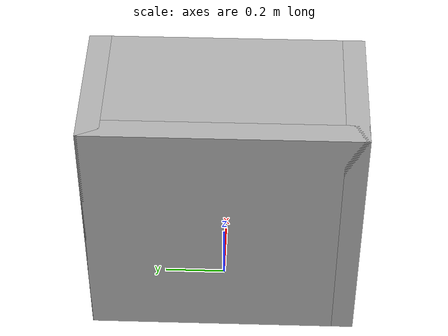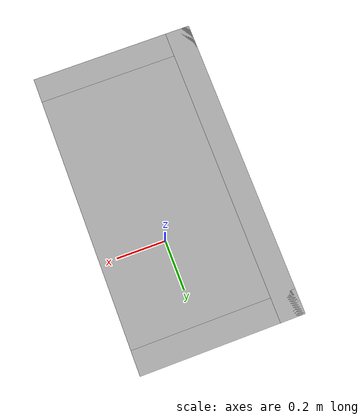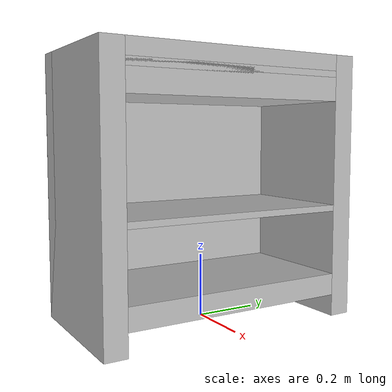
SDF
<?xml version="1.0" ?>
<sdf version="1.6">
  <model name="rwc2023/small_cabinet">
    <static>true</static>
    <link name="1_link">
      <collision name="1_col">
        <geometry>
          <box>
            <size>0.46 0.07 0.84</size>
          </box>
        </geometry>
      </collision>
      <visual name="1_vis">
        <geometry>
          <box>
            <size>0.46 0.07 0.84</size>
          </box>
        </geometry>
      </visual>
      <pose>0.0 -0.395 0.42 0 0 0</pose>
    </link>
    <link name="2_link">
      <collision name="2_col">
        <geometry>
          <box>
            <size>0.46 0.07 0.84</size>
          </box>
        </geometry>
      </collision>
      <visual name="2_vis">
        <geometry>
          <box>
            <size>0.46 0.07 0.84</size>
          </box>
        </geometry>
      </visual>
      <pose>0.0 0.395 0.42 0 0 0</pose>
    </link>
    <link name="3_link">
      <collision name="3_col">
        <geometry>
          <box>
            <size>0.07 0.86 0.84</size>
          </box>
        </geometry>
      </collision>
      <visual name="3_vis">
        <geometry>
          <box>
            <size>0.07 0.86 0.84</size>
          </box>
        </geometry>
      </visual>
      <pose>-0.195 0.0 0.42 0 0 0</pose>
    </link>
    <link name="4_link">
      <collision name="4_col">
        <geometry>
          <box>
            <size>0.39 0.72 0.075</size>
          </box>
        </geometry>
      </collision>
      <visual name="4_vis">
        <geometry>
          <box>
            <size>0.39 0.72 0.075</size>
          </box>
        </geometry>
      </visual>
      <pose>0.035 0.0 0.8025 0 0 0</pose>
    </link>
    <link name="5_link">
      <collision name="5_col">
        <geometry>
          <box>
            <size>0.39 0.72 0.07</size>
          </box>
        </geometry>
      </collision>
      <visual name="5_vis">
        <geometry>
          <box>
            <size>0.39 0.72 0.07</size>
          </box>
        </geometry>
      </visual>
      <pose>0.035 0.0 0.105 0 0 0</pose>
    </link>
    <link name="6_link">
      <collision name="6_col">
        <geometry>
          <box>
            <size>0.39 0.72 0.02</size>
          </box>
        </geometry>
      </collision>
      <visual name="6_vis">
        <geometry>
          <box>
            <size>0.39 0.72 0.02</size>
          </box>
        </geometry>
      </visual>
      <pose>0.035 0.0 0.355 0 0 0</pose>
    </link>
    <link name="7_link">
      <collision name="7_col">
        <geometry>
          <box>
            <size>0.39 0.72 0.075</size>
          </box>
        </geometry>
      </collision>
      <visual name="7_vis">
        <geometry>
          <box>
            <size>0.39 0.72 0.075</size>
          </box>
        </geometry>
      </visual>
      <pose>0.035 0.0 0.7325 0 0 0</pose>
    </link>
    <link name="8_link">
      <collision name="8_col">
        <geometry>
          <box>
            <size>0.39 0.72 0.02</size>
          </box>
        </geometry>
      </collision>
      <visual name="8_vis">
        <geometry>
          <box>
            <size>0.39 0.72 0.02</size>
          </box>
        </geometry>
      </visual>
      <pose>0.035 0.0 0.78 0 0 0</pose>
    </link>
    <link name="in_front_of">
      <virtual_volume name="in_front_of_vv">
        <geometry>
          <box>
            <size>0.2 0.66 0.01</size>
          </box>
        </geometry>
        <pose>0.73 0.0 0.005 0 0 0</pose>
      </virtual_volume>
    </link>
    <link name="shelf1">
      <virtual_volume name="shelf1_vv">
        <geometry>
          <box>
            <size>0.37 0.66 0.25</size>
          </box>
        </geometry>
        <pose>0.035 0.0 0.285 0 0 0</pose>
      </virtual_volume>
    </link>
    <link name="shelf2">
      <virtual_volume name="shelf2_vv">
        <geometry>
          <box>
            <size>0.37 0.66 0.25</size>
          </box>
        </geometry>
        <pose>0.035 0.0 0.51 0 0 0</pose>
      </virtual_volume>
    </link>
    <link name="shelf3">
      <virtual_volume name="shelf3_vv">
        <geometry>
          <box>
            <size>0.37 0.66 0.25</size>
          </box>
        </geometry>
        <pose>0.035 0.0 0.915 0 0 0</pose>
      </virtual_volume>
    </link>
    <link name="shelf4">
      <virtual_volume name="shelf4_vv">
        <geometry>
          <box>
            <size>0.37 0.66 0.25</size>
          </box>
        </geometry>
        <pose>0.035 0.0 0.935 0 0 0</pose>
      </virtual_volume>
    </link>
  </model>
</sdf>
